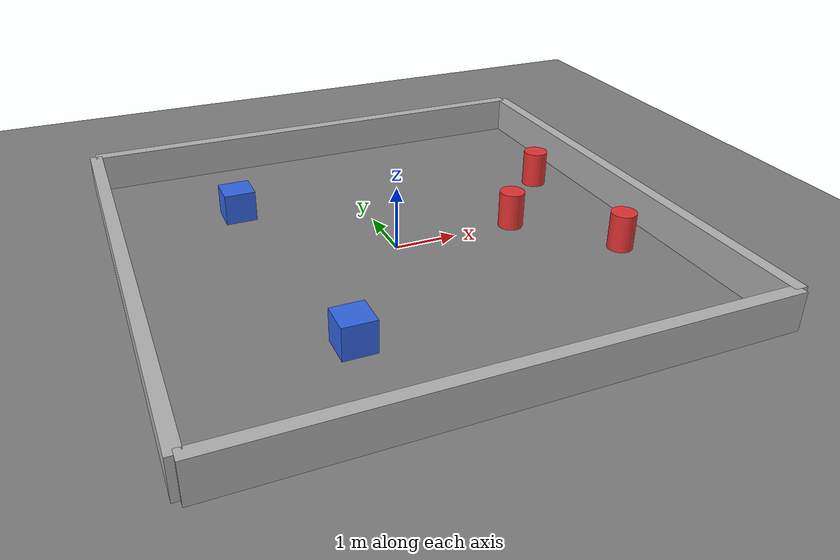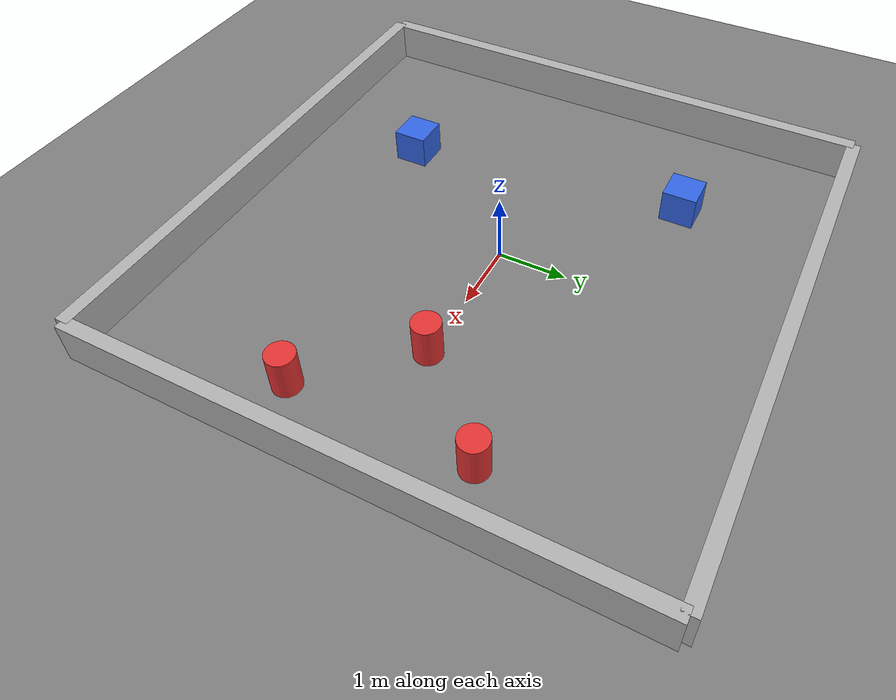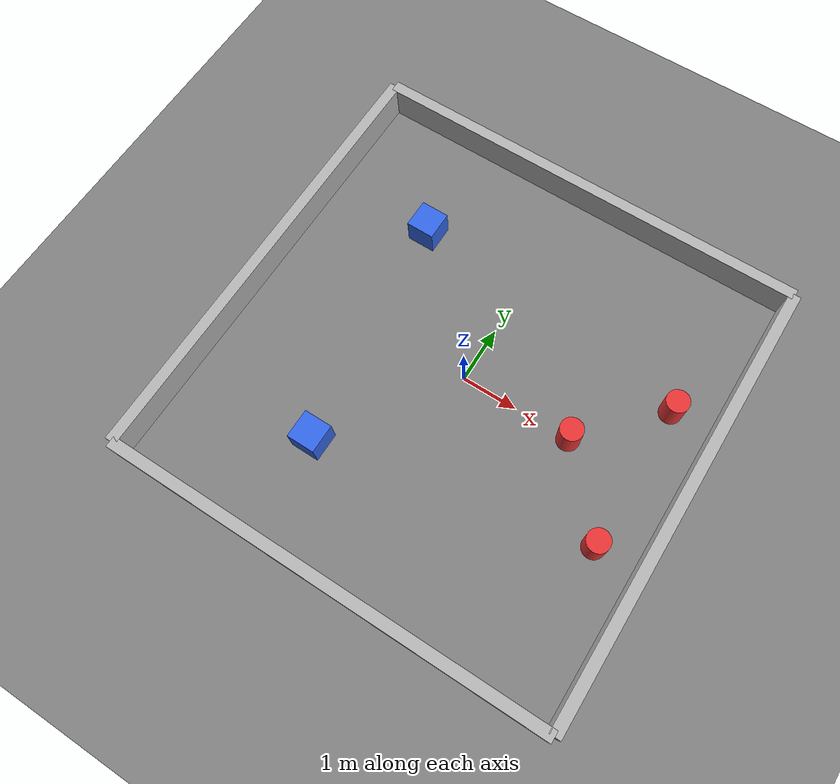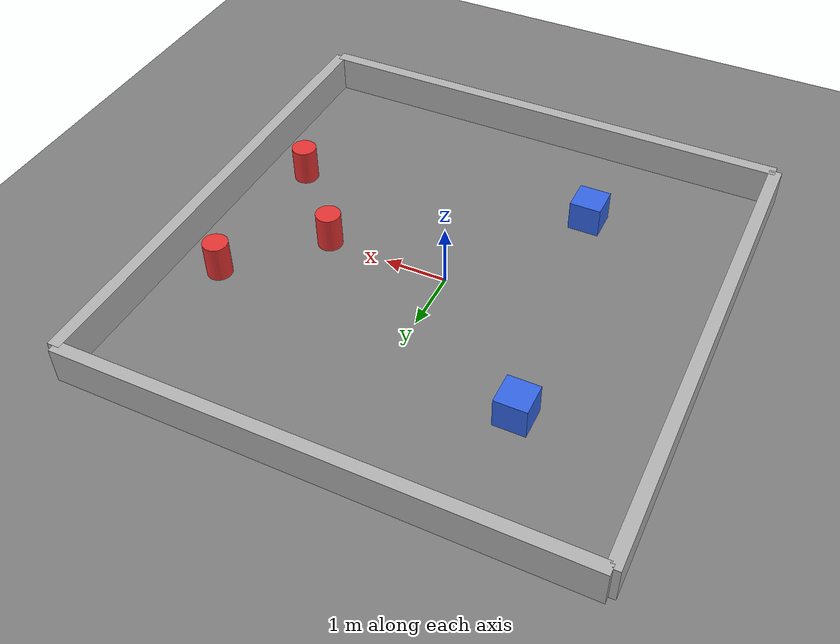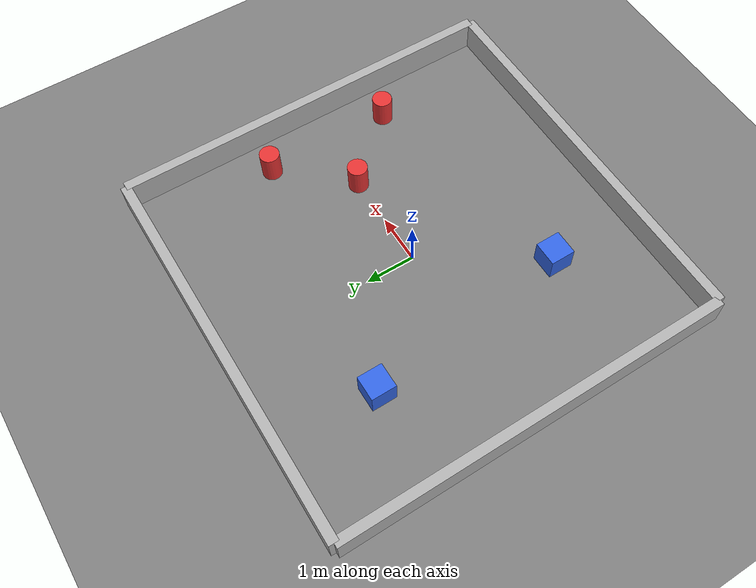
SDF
<?xml version="1.0"?>
<sdf version="1.8">
  <world name="wes_world">

    <plugin filename="ignition-gazebo-physics-system"
            name="ignition::gazebo::systems::Physics"/>
    <plugin filename="ignition-gazebo-sensors-system"
            name="ignition::gazebo::systems::Sensors">
      <render_engine>ogre2</render_engine>
    </plugin>
    <plugin filename="ignition-gazebo-user-commands-system"
            name="ignition::gazebo::systems::UserCommands"/>
    <plugin filename="ignition-gazebo-scene-broadcaster-system"
            name="ignition::gazebo::systems::SceneBroadcaster"/>

    <light type="directional" name="sun">
      <cast_shadows>true</cast_shadows>
      <pose>0 0 10 0 0 0</pose>
      <diffuse>0.8 0.8 0.8 1</diffuse>
      <specular>0.2 0.2 0.2 1</specular>
      <direction>-0.5 0.1 -0.9</direction>
    </light>

    <model name="ground_plane">
      <static>true</static>
      <link name="link">
        <collision name="collision">
          <geometry><plane><normal>0 0 1</normal><size>50 50</size></plane></geometry>
          <surface><friction><ode><mu>1.0</mu><mu2>1.0</mu2></ode></friction></surface>
        </collision>
        <visual name="visual">
          <geometry><plane><normal>0 0 1</normal><size>50 50</size></plane></geometry>
          <material><ambient>0.3 0.3 0.3 1</ambient><diffuse>0.5 0.5 0.5 1</diffuse></material>
        </visual>
      </link>
    </model>

    <!-- ===== 8×8m 圍牆（厚 0.2、高 0.6），四面各一道 ===== -->
    <model name="wall_north"><static>true</static><pose>0 4 0.3 0 0 0</pose>
      <link name="l"><collision name="c"><geometry><box><size>8 0.2 0.6</size></box></geometry></collision>
        <visual name="v"><geometry><box><size>8 0.2 0.6</size></box></geometry>
          <material><ambient>0.6 0.6 0.6 1</ambient><diffuse>0.7 0.7 0.7 1</diffuse></material></visual></link></model>
    <model name="wall_south"><static>true</static><pose>0 -4 0.3 0 0 0</pose>
      <link name="l"><collision name="c"><geometry><box><size>8 0.2 0.6</size></box></geometry></collision>
        <visual name="v"><geometry><box><size>8 0.2 0.6</size></box></geometry>
          <material><ambient>0.6 0.6 0.6 1</ambient><diffuse>0.7 0.7 0.7 1</diffuse></material></visual></link></model>
    <model name="wall_east"><static>true</static><pose>4 0 0.3 0 0 0</pose>
      <link name="l"><collision name="c"><geometry><box><size>0.2 8 0.6</size></box></geometry></collision>
        <visual name="v"><geometry><box><size>0.2 8 0.6</size></box></geometry>
          <material><ambient>0.6 0.6 0.6 1</ambient><diffuse>0.7 0.7 0.7 1</diffuse></material></visual></link></model>
    <model name="wall_west"><static>true</static><pose>-4 0 0.3 0 0 0</pose>
      <link name="l"><collision name="c"><geometry><box><size>0.2 8 0.6</size></box></geometry></collision>
        <visual name="v"><geometry><box><size>0.2 8 0.6</size></box></geometry>
          <material><ambient>0.6 0.6 0.6 1</ambient><diffuse>0.7 0.7 0.7 1</diffuse></material></visual></link></model>

    <!-- ===== 柱子（圓柱，半徑 0.2、高 0.6）：車前方 slalom ===== -->
    <model name="pillar_1"><static>true</static><pose>2.0 0.0 0.3 0 0 0</pose>
      <link name="l"><collision name="c"><geometry><cylinder><radius>0.2</radius><length>0.6</length></cylinder></geometry></collision>
        <visual name="v"><geometry><cylinder><radius>0.2</radius><length>0.6</length></cylinder></geometry>
          <material><ambient>0.8 0.2 0.2 1</ambient><diffuse>0.9 0.2 0.2 1</diffuse></material></visual></link></model>
    <model name="pillar_2"><static>true</static><pose>3.2 1.3 0.3 0 0 0</pose>
      <link name="l"><collision name="c"><geometry><cylinder><radius>0.2</radius><length>0.6</length></cylinder></geometry></collision>
        <visual name="v"><geometry><cylinder><radius>0.2</radius><length>0.6</length></cylinder></geometry>
          <material><ambient>0.8 0.2 0.2 1</ambient><diffuse>0.9 0.2 0.2 1</diffuse></material></visual></link></model>
    <model name="pillar_3"><static>true</static><pose>3.2 -1.3 0.3 0 0 0</pose>
      <link name="l"><collision name="c"><geometry><cylinder><radius>0.2</radius><length>0.6</length></cylinder></geometry></collision>
        <visual name="v"><geometry><cylinder><radius>0.2</radius><length>0.6</length></cylinder></geometry>
          <material><ambient>0.8 0.2 0.2 1</ambient><diffuse>0.9 0.2 0.2 1</diffuse></material></visual></link></model>

    <!-- ===== 箱子障礙 ===== -->
    <model name="box_a"><static>true</static><pose>-2.0 2.0 0.25 0 0 0</pose>
      <link name="l"><collision name="c"><geometry><box><size>0.5 0.5 0.5</size></box></geometry></collision>
        <visual name="v"><geometry><box><size>0.5 0.5 0.5</size></box></geometry>
          <material><ambient>0.2 0.4 0.8 1</ambient><diffuse>0.2 0.4 0.9 1</diffuse></material></visual></link></model>
    <model name="box_b"><static>true</static><pose>-1.5 -2.2 0.25 0 0 0</pose>
      <link name="l"><collision name="c"><geometry><box><size>0.5 0.5 0.5</size></box></geometry></collision>
        <visual name="v"><geometry><box><size>0.5 0.5 0.5</size></box></geometry>
          <material><ambient>0.2 0.4 0.8 1</ambient><diffuse>0.2 0.4 0.9 1</diffuse></material></visual></link></model>

  </world>
</sdf>
